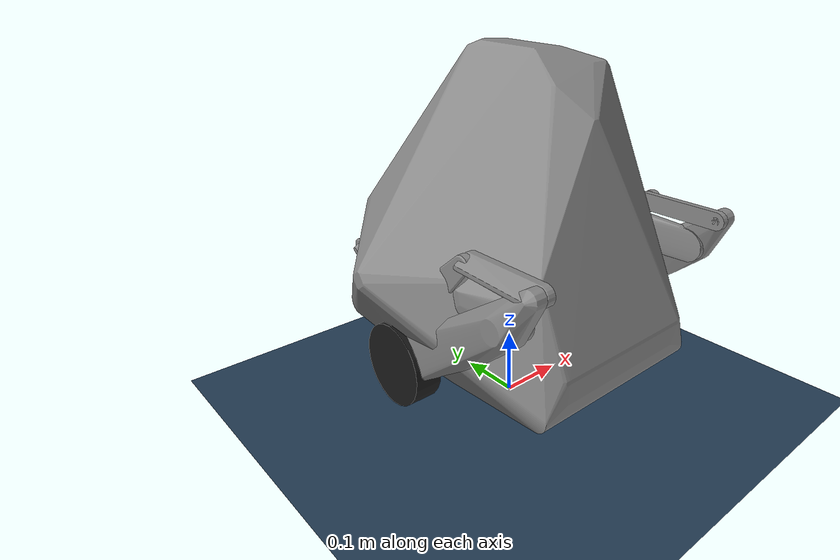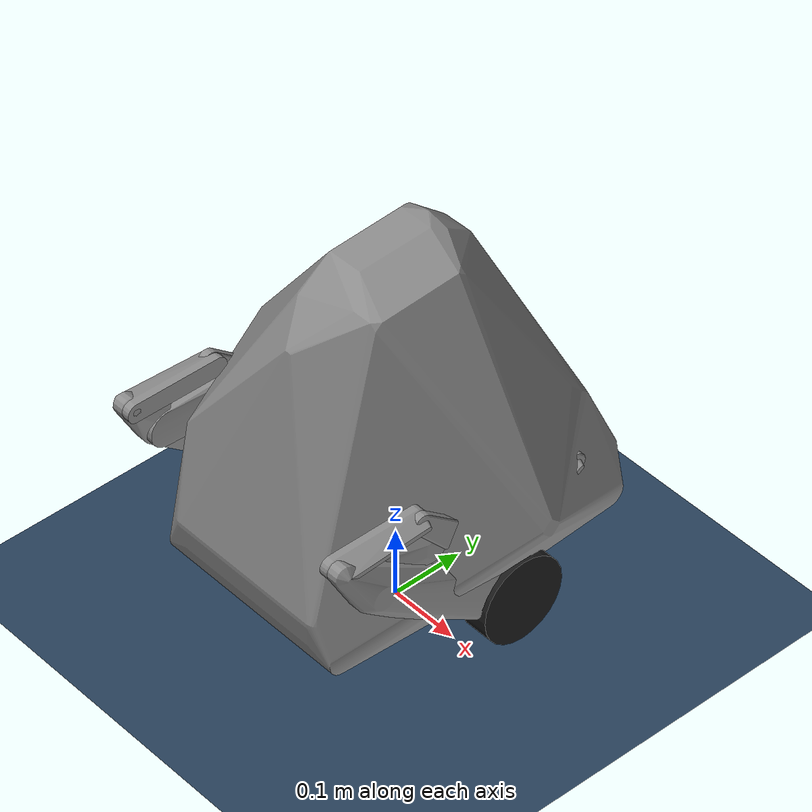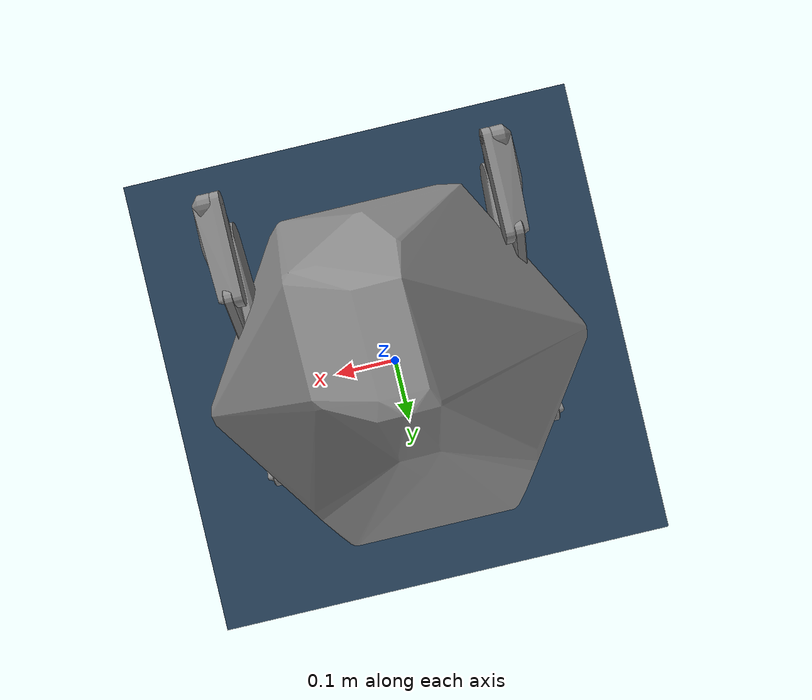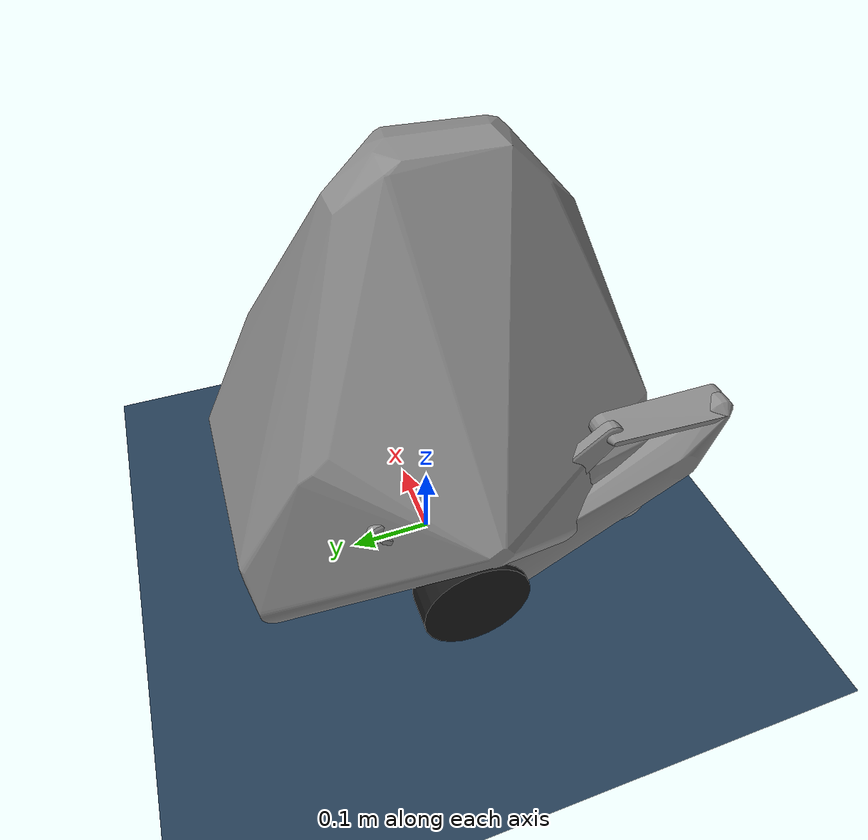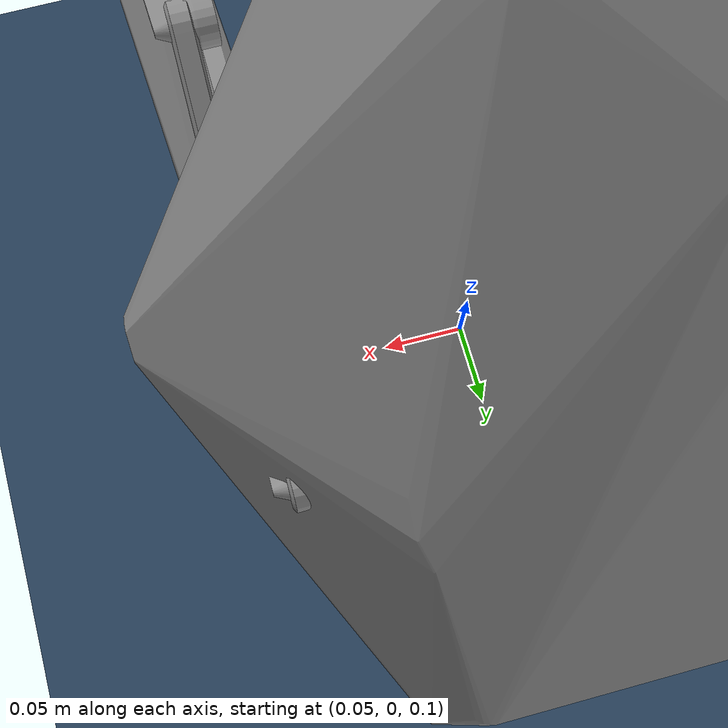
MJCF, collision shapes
<mujoco model="real68 scene">
  <include file="real68.xml"/>

  <statistic center="0 0 0.2" extent="0.8"/>

  <visual>
    <headlight diffuse="0.6 0.6 0.6" ambient="0.3 0.3 0.3" specular="0 0 0"/>
    <rgba haze="0.15 0.25 0.35 1"/>
    <global azimuth="-130" elevation="-20"/>
  </visual>

  <asset>
    <texture type="skybox" builtin="gradient" rgb1="0.3 0.5 0.7" rgb2="0 0 0" width="512" height="3072"/>
    <texture type="2d" name="groundplane" builtin="checker" mark="edge" rgb1="0.2 0.3 0.4" rgb2="0.1 0.2 0.3" markrgb="0.8 0.8 0.8" width="300" height="300"/>
    <material name="groundplane" texture="groundplane" texuniform="true" texrepeat="5 5" reflectance="0.2"/>
  </asset>

  <worldbody>
    <light pos="0 0 1.5" dir="0 0 -1" directional="true"/>
    <geom name="floor" size="0 0 0.05" type="plane" material="groundplane"/>
  </worldbody>

  <contact>
    <pair geom1="left_chuanliangan3_collision" geom2="floor" solref="0.02 1" solimp="0.8 0.95 0.002 0.9 2"/>
    <pair geom1="left_chuanliangan5_collision" geom2="floor" solref="0.02 1" solimp="0.8 0.95 0.002 0.9 2"/>
    <pair geom1="right_liangan3_collision" geom2="floor" solref="0.02 1" solimp="0.8 0.95 0.002 0.9 2"/>
    <pair geom1="right_liangan5_collision" geom2="floor" solref="0.02 1" solimp="0.8 0.95 0.002 0.9 2"/>
    <pair geom1="left_wheel_ground_contact" geom2="floor" solref="0.02 1" solimp="0.8 0.95 0.002 0.9 2"/>
    <pair geom1="right_wheel_ground_contact" geom2="floor" solref="0.02 1" solimp="0.8 0.95 0.002 0.9 2"/>
  </contact>

  <sensor>
    <contact name="left_wheel_contact" geom1="floor" geom2="left_wheel_ground_contact" data="found" num="1" reduce="mindist"/>
    <contact name="right_wheel_contact" geom1="floor" geom2="right_wheel_ground_contact" data="found" num="1" reduce="mindist"/>
    <contact name="base_link_contact" body1="base_link" geom2="floor" data="found" num="1" reduce="mindist"/>
    <contact name="left_hip_bigleg_contact" geom1="floor" geom2="left_hip_bigleg_collision" data="found" num="1" reduce="mindist"/>
    <contact name="left_calf_smallleg_liangan_contact" geom1="floor" geom2="left_calf_smallleg_liangan_collision" data="found" num="1" reduce="mindist"/>
    <contact name="left_calf_smallleg_contact" geom1="floor" geom2="left_calf_smallleg_collision" data="found" num="1" reduce="mindist"/>
    <contact name="left_chuanliangan2_contact" geom1="floor" geom2="left_chuanliangan2_collision" data="found" num="1" reduce="mindist"/>
    <contact name="left_chuanliangan3_contact" geom1="floor" geom2="left_chuanliangan3_collision" data="found" num="1" reduce="mindist"/>
    <contact name="left_chuanliangan5_contact" geom1="floor" geom2="left_chuanliangan5_collision" data="found" num="1" reduce="mindist"/>
    <contact name="right_hip_bigleg_contact" geom1="floor" geom2="right_hip_bigleg_collision" data="found" num="1" reduce="mindist"/>
    <contact name="right_calf_smallleg_liangan_contact" geom1="floor" geom2="right_calf_smallleg_liangan_collision" data="found" num="1" reduce="mindist"/>
    <contact name="right_calf_smallleg_contact" geom1="floor" geom2="right_calf_smallleg_collision" data="found" num="1" reduce="mindist"/>
    <contact name="right_liangan2_contact" geom1="floor" geom2="right_liangan2_collision" data="found" num="1" reduce="mindist"/>
    <contact name="right_liangan3_contact" geom1="floor" geom2="right_liangan3_collision" data="found" num="1" reduce="mindist"/>
    <contact name="right_liangan5_contact" geom1="floor" geom2="right_liangan5_collision" data="found" num="1" reduce="mindist"/>
  </sensor>

  <keyframe>
    <key name="home" qpos="
      0 0 0.257282
      1 0 0 0
      0.2009805 0.275501 -0.045959 -0.517042 0.275452 -0.080660 0.275316
      -0.2009805 0.275501 -0.076009 0.517042 -0.275452 0.080660 0.275316"
      ctrl="0 0 0 0 0 0"/>
  </keyframe>
</mujoco>

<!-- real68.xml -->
<mujoco model="real68">
  <compiler angle="radian" meshdir="assets" autolimits="true" inertiafromgeom="false"/>
  <option timestep="0.001" gravity="0 0 -9.81" iterations="100" ls_iterations="50"/>

  <default>
    <geom contype="1" conaffinity="0" friction="0.8 0.1 0.1" density="0"/>
    <default class="real68_collision">
      <geom group="3" rgba="0.55 0.55 0.55 0.18" friction="0.9 0.02 0.002" contype="1" conaffinity="1" density="0" condim="3"/>
    </default>
  </default>

  <asset>
    <material name="mat_collision" rgba="0.55 0.55 0.55 0.18"/>
    <mesh name="base_link" file="base_link.STL"/>
    <mesh name="left_calf_smallleg" file="left_calf_smallleg.STL"/>
    <mesh name="left_calf_smallleg_liangan" file="left_calf_smallleg_liangan.STL"/>
    <mesh name="left_chuanliangan2" file="left_chuanliangan2.STL"/>
    <mesh name="left_chuanliangan3" file="left_chuanliangan3.STL"/>
    <mesh name="left_chuanliangan5" file="left_chuanliangan5.STL"/>
    <mesh name="left_hip_bigleg" file="left_hip_bigleg.STL"/>
    <mesh name="left_wheel" file="left_wheel.STL"/>
    <mesh name="right_calf_smallleg" file="right_calf_smallleg.STL"/>
    <mesh name="right_calf_smallleg_liangan" file="right_calf_smallleg_liangan.STL"/>
    <mesh name="right_hip_bigleg" file="right_hip_bigleg.STL"/>
    <mesh name="right_liangan2" file="right_liangan2.STL"/>
    <mesh name="right_liangan3" file="right_liangan3.STL"/>
    <mesh name="right_liangan5" file="right_liangan5.STL"/>
    <mesh name="right_wheel" file="right_wheel.STL"/>
    <mesh name="base_link_collision_mesh" file="collision/base_link_collision.STL"/>
    <mesh name="left_hip_bigleg_collision_mesh" file="collision/left_hip_bigleg_collision.STL"/>
    <mesh name="left_calf_smallleg_liangan_collision_mesh" file="collision/left_calf_smallleg_liangan_collision.STL"/>
    <mesh name="left_calf_smallleg_collision_mesh" file="collision/left_calf_smallleg_collision.STL"/>
    <mesh name="left_chuanliangan2_collision_mesh" file="collision/left_chuanliangan2_collision.STL"/>
    <mesh name="left_chuanliangan3_collision_mesh" file="collision/left_chuanliangan3_collision.STL"/>
    <mesh name="left_chuanliangan5_collision_mesh" file="collision/left_chuanliangan5_collision.STL"/>
    <mesh name="right_hip_bigleg_collision_mesh" file="collision/right_hip_bigleg_collision.STL"/>
    <mesh name="right_calf_smallleg_liangan_collision_mesh" file="collision/right_calf_smallleg_liangan_collision.STL"/>
    <mesh name="right_calf_smallleg_collision_mesh" file="collision/right_calf_smallleg_collision.STL"/>
    <mesh name="right_liangan2_collision_mesh" file="collision/right_liangan2_collision.STL"/>
    <mesh name="right_liangan3_collision_mesh" file="collision/right_liangan3_collision.STL"/>
    <mesh name="right_liangan5_collision_mesh" file="collision/right_liangan5_collision.STL"/>
  </asset>

  <worldbody>
    <body name="base_link" pos="0 0 0.256230" gravcomp="0">
      <freejoint name="base_free"/>
      <inertial
        pos="-0.00132434244703769 0.0172850703011076 0.0327987743072088"
        mass="9.9614853561176"
        fullinertia="0.0150456290506877 0.0147083160106689 0.020560729909447 -8.42015360450442E-06 1.7027645408049E-05 -2.2943093759725E-05"/>
      <site name="imu_site" pos="0 0 0" size="0.005" rgba="0.2 0.8 0.9 0.7" group="5"/>
      <geom name="base_link_visual" type="mesh" mesh="base_link" rgba="0.647058823529412 0.619607843137255 0.588235294117647 1" group="1" contype="0" conaffinity="0"/>
      <geom name="base_link_collision" type="mesh" mesh="base_link_collision_mesh" class="real68_collision"/>

      <body name="left_hip_bigleg" pos="-0.173052541904345 0.0153736058348721 0.0102446421173633">
        <joint name="left_hip_bigleg_joint" type="hinge" axis="1 0 0" damping="0.05" armature="0.005"/>
        <inertial pos="-0.000219746901381638 -0.101308073503432 0.00240688958486085" mass="0.263037897106768" fullinertia="0.00146612202923645 7.95671567353713E-05 0.00139103007363177 4.55398927684304E-08 -9.16464171603606E-09 1.9708541502943E-05"/>
        <geom name="left_hip_bigleg_visual" type="mesh" mesh="left_hip_bigleg" rgba="0.764705882352941 0.337254901960784 1 1" group="1" contype="0" conaffinity="0"/>
        <geom name="left_hip_bigleg_collision" type="mesh" mesh="left_hip_bigleg_collision_mesh" class="real68_collision"/>
        <site name="left_hip_bigleg_upper_loop_site" pos="0 -0.095 0" size="0.006" rgba="0.05 0.8 0.35 1"/>

        <body name="left_calf_smallleg_liangan" pos="-0.0155000000000023 -0.215 0">
          <joint name="left_calf_smallleg_liangan_joint" type="hinge" axis="-1 0 0" damping="0.05" armature="0.005" range="0 0.99" limited="true"/>
          <inertial pos="-0.000813259759227931 0.0621665240567283 -0.0450257373726943" mass="0.348266975116161" fullinertia="0.00255636487261541 0.000879689262529599 0.00169334510916448 -6.78174399093104E-07 8.59472859523973E-07 0.00112066108155895"/>
          <geom name="left_calf_smallleg_liangan_visual" type="mesh" mesh="left_calf_smallleg_liangan" rgba="1 1 1 1" group="1" contype="0" conaffinity="0"/>
          <geom name="left_calf_smallleg_liangan_collision" type="mesh" mesh="left_calf_smallleg_liangan_collision_mesh" class="real68_collision"/>
          <site name="left_calf_smallleg_liangan_loop_site" pos="0 -0.04302 0.04873" size="0.006" rgba="0.05 0.35 1 1"/>

          <body name="left_wheel" pos="0 0.214999999999998 -0.142614865985284">
            <joint name="left_wheel_joint" type="hinge" axis="1 0 0" damping="0.05" armature="0.005"/>
            <inertial pos="-0.0292649720775254 8.0592612691277E-05 -4.22455592956061E-05" mass="0.355263603886936" fullinertia="0.000740356424288123 0.000397340943479887 0.000396792456478284 -2.23358145570221E-07 9.22720741167224E-08 -2.77805316278827E-07"/>
            <geom name="left_wheel_visual" type="mesh" mesh="left_wheel" rgba="0.898039215686275 0.917647058823529 0.929411764705882 1" group="1" contype="0" conaffinity="0"/>
            <geom name="left_wheel_collision" type="mesh" mesh="left_wheel" group="3" rgba="0.55 0.55 0.55 0.18" contype="0" conaffinity="0"/>
            <geom name="left_wheel_ground_contact" type="cylinder" size="0.06 0.02" quat="0.70710678 0 0.70710678 0" rgba="0.1 0.1 0.1 0.2" friction="1.4 0.02 0.002" contype="1" conaffinity="1" density="0" condim="3"/>
          </body>
        </body>

        <body name="left_calf_smallleg" pos="0 0 0">
          <joint name="left_calf_smallleg_joint" type="hinge" axis="1 0 0" damping="0.05" armature="0.005"/>
          <inertial pos="-0.0131414441627703 0.0552390007483394 -1.38777878078145E-16" mass="0.0744739466903637" fullinertia="8.1622255397731E-05 9.30868484898377E-06 7.33203506377679E-05 -4.15453379048053E-07 1.60520136691981E-21 1.68517196824682E-19"/>
          <geom name="left_calf_smallleg_visual" type="mesh" mesh="left_calf_smallleg" rgba="0.898039215686275 0.917647058823529 0.929411764705882 1" group="1" contype="0" conaffinity="0"/>
          <geom name="left_calf_smallleg_collision" type="mesh" mesh="left_calf_smallleg_collision_mesh" class="real68_collision"/>

          <body name="left_chuanliangan2" pos="-0.000499999999999006 0.0949999999999999 0">
            <joint name="left_chuanliangan2_joint" type="hinge" axis="1 0 0" damping="0.05" armature="0.005" range="0 0.98" limited="true"/>
            <inertial pos="-0.00213213748385587 -0.0469637483789413 -0.0330097658251312" mass="0.0870883663506132" fullinertia="0.000118248399513985 3.98366360409607E-05 8.3619945286352E-05 3.35722604990033E-08 3.0541172133192E-08 -5.13756715459264E-05"/>
            <geom name="left_chuanliangan2_visual" type="mesh" mesh="left_chuanliangan2" rgba="0.898039215686275 0.917647058823529 0.929411764705882 1" group="1" contype="0" conaffinity="0"/>
            <geom name="left_chuanliangan2_collision" type="mesh" mesh="left_chuanliangan2_collision_mesh" class="real68_collision"/>

            <body name="left_chuanliangan3" pos="0 -0.0950000000000002 -0.0630158710167523">
              <joint name="left_chuanliangan3_joint" type="hinge" axis="1 0 0" damping="0.05" armature="0.005" range="-0.59 0" limited="true"/>
              <inertial pos="-0.0124972208107553 -0.0748582415461167 0.0553152463382384" mass="0.115370735580252" fullinertia="0.000173731014314758 7.06863133257899E-05 0.000104234391413488 -7.09140353520442E-19 5.44752745268893E-19 7.87828463496707E-05"/>
              <geom name="left_chuanliangan3_visual" type="mesh" mesh="left_chuanliangan3" rgba="1 1 1 1" group="1" contype="0" conaffinity="0"/>
              <geom name="left_chuanliangan3_collision" type="mesh" mesh="left_chuanliangan3_collision_mesh" class="real68_collision"/>
              <site name="left_chuanliangan3_upper_loop_site" pos="0 -0.095 0.06302" size="0.006" rgba="1 0.7 0.05 1"/>

              <body name="left_chuanliangan5" pos="-0.0130000000000015 -0.13802158759429 0.111741049321884">
                <joint name="left_chuanliangan5_joint" type="hinge" axis="1 0 0" damping="0.05" armature="0.005" range="0 0.99" limited="true"/>
                <inertial pos="0.0100896855576336 -0.061330058396757 3.88578058618805E-16" mass="0.0907006475745755" fullinertia="0.000130603403834254 6.44412731949388E-06 0.000130575590723343 -1.30992294690664E-18 9.64839790001429E-22 -1.77482419182007E-09"/>
                <geom name="left_chuanliangan5_visual" type="mesh" mesh="left_chuanliangan5" rgba="0.898039215686275 0.917647058823529 0.929411764705882 1" group="1" contype="0" conaffinity="0"/>
                <geom name="left_chuanliangan5_collision" type="mesh" mesh="left_chuanliangan5_collision_mesh" class="real68_collision"/>
                <site name="left_chuanliangan5_loop_site" pos="-0.002 -0.120 0" size="0.006" rgba="1 0.15 0.05 1"/>
              </body>
            </body>
          </body>
        </body>
      </body>

      <body name="right_hip_bigleg" pos="0.168247458095655 0.0153736058348686 0.0102446421173926">
        <joint name="right_hip_bigleg_joint" type="hinge" axis="-1 0 0" damping="0.05" armature="0.005"/>
        <inertial pos="0.000225305279873633 -0.10131912445557 0.0024132698550518" mass="0.263037897106769" fullinertia="0.0014654815737583 7.95186627094033E-05 0.00139043811217959 -4.55823378419894E-08 9.18914737939143E-09 1.94956598926327E-05"/>
        <geom name="right_hip_bigleg_visual" type="mesh" mesh="right_hip_bigleg" rgba="0.898039215686275 0.917647058823529 0.929411764705882 1" group="1" contype="0" conaffinity="0"/>
        <geom name="right_hip_bigleg_collision" type="mesh" mesh="right_hip_bigleg_collision_mesh" class="real68_collision"/>
        <site name="right_hip_bigleg_upper_loop_site" pos="0 -0.095 0" size="0.006" rgba="0.05 0.8 0.35 1"/>

        <body name="right_calf_smallleg_liangan" pos="0.0154999999999977 -0.215 0">
          <joint name="right_calf_smallleg_liangan_joint" type="hinge" axis="-1 0 0" damping="0.05" armature="0.005" range="0 0.99" limited="true"/>
          <inertial pos="0.000823064990111144 0.0621889019965068 -0.045110958311392" mass="0.348668897550022" fullinertia="0.00255713495377316 0.000880415160469513 0.00169340931900021 6.9579457168601E-07 -7.66552831976176E-07 0.00112090385448229"/>
          <geom name="right_calf_smallleg_liangan_visual" type="mesh" mesh="right_calf_smallleg_liangan" rgba="1 1 1 1" group="1" contype="0" conaffinity="0"/>
          <geom name="right_calf_smallleg_liangan_collision" type="mesh" mesh="right_calf_smallleg_liangan_collision_mesh" class="real68_collision"/>
          <site name="right_calf_smallleg_liangan_loop_site" pos="0 -0.04302 0.04873" size="0.006" rgba="0.05 0.35 1 1"/>

          <body name="right_wheel" pos="0 0.215 -0.142614865985287">
            <joint name="right_wheel_joint" type="hinge" axis="1 0 0" damping="0.05" armature="0.005"/>
            <inertial pos="0.0292705304484341 8.87559201086241E-05 -2.00557188388302E-05" mass="0.355263604031154" fullinertia="0.000740356424291986 0.000397384810358229 0.000396748589602256 2.299045170983E-07 -7.44777342414805E-08 -2.2625445432611E-07"/>
            <geom name="right_wheel_visual" type="mesh" mesh="right_wheel" rgba="1 1 1 1" group="1" contype="0" conaffinity="0"/>
            <geom name="right_wheel_collision" type="mesh" mesh="right_wheel" group="3" rgba="0.55 0.55 0.55 0.18" contype="0" conaffinity="0"/>
            <geom name="right_wheel_ground_contact" type="cylinder" size="0.06 0.02" quat="0.70710678 0 0.70710678 0" rgba="0.1 0.1 0.1 0.2" friction="1.4 0.02 0.002" contype="1" conaffinity="1" density="0" condim="3"/>
          </body>
        </body>

        <body name="right_calf_smallleg" pos="0.013 0 0">
          <joint name="right_calf_smallleg_joint" type="hinge" axis="-1 0 0" damping="0.05" armature="0.005"/>
          <inertial pos="0.000147002541264762 0.0552390007483268 1.15712994741557E-13" mass="0.0744739466903638" fullinertia="8.16222553977312E-05 9.30868484898377E-06 7.33203506377681E-05 4.15453379046786E-07 -2.63706709578613E-23 -3.68734906878956E-21"/>
          <geom name="right_calf_smallleg_visual" type="mesh" mesh="right_calf_smallleg" rgba="0.898039215686275 0.917647058823529 0.929411764705882 1" group="1" contype="0" conaffinity="0"/>
          <geom name="right_calf_smallleg_collision" type="mesh" mesh="right_calf_smallleg_collision_mesh" class="real68_collision"/>

          <body name="right_liangan2" pos="-0.012499999999999 0.0949999999999868 0">
            <joint name="right_liangan2_joint" type="hinge" axis="-1 0 0" damping="0.05" armature="0.005" range="-0.98 0" limited="true"/>
            <inertial pos="0.00213769586234819 -0.046963748378941 -0.0330097658251313" mass="0.087088366350613" fullinertia="0.000118248399513984 3.98347732424781E-05 8.36218080848341E-05 -3.35722605001056E-08 -3.05411721339202E-08 -5.1372013684019E-05"/>
            <geom name="right_liangan2_visual" type="mesh" mesh="right_liangan2" rgba="0.898039215686275 0.917647058823529 0.929411764705882 1" group="1" contype="0" conaffinity="0"/>
            <geom name="right_liangan2_collision" type="mesh" mesh="right_liangan2_collision_mesh" class="real68_collision"/>

            <body name="right_liangan3" pos="0 -0.0949999999999998 -0.0630158710167527">
              <joint name="right_liangan3_joint" type="hinge" axis="-1 0 0" damping="0.05" armature="0.005" range="0 0.59" limited="true"/>
              <inertial pos="0.0125027791892476 -0.0748582415461172 0.0553152463382379" mass="0.115370735580252" fullinertia="0.000173731014314758 7.06863133257888E-05 0.000104234391413489 -7.27962615036999E-19 5.5828278066847E-19 7.87828463496704E-05"/>
              <geom name="right_liangan3_visual" type="mesh" mesh="right_liangan3" rgba="1 1 1 1" group="1" contype="0" conaffinity="0"/>
              <geom name="right_liangan3_collision" type="mesh" mesh="right_liangan3_collision_mesh" class="real68_collision"/>
              <site name="right_liangan3_upper_loop_site" pos="0 -0.095 0.06302" size="0.006" rgba="1 0.7 0.05 1"/>

              <body name="right_liangan5" pos="0.0129999999999986 -0.138021587594291 0.111741049321883">
                <joint name="right_liangan5_joint" type="hinge" axis="1 0 0" damping="0.05" armature="0.005" range="0 0.99" limited="true"/>
                <inertial pos="-0.0100841271791399 -0.0613300583967568 -1.38777878078145E-16" mass="0.0907006475745755" fullinertia="0.000130603403834254 6.44644114342168E-06 0.000130573276899415 -6.5999751473204E-19 -2.95459147296541E-21 -2.32807861826833E-09"/>
                <geom name="right_liangan5_visual" type="mesh" mesh="right_liangan5" rgba="0.898039215686275 0.917647058823529 0.929411764705882 1" group="1" contype="0" conaffinity="0"/>
                <geom name="right_liangan5_collision" type="mesh" mesh="right_liangan5_collision_mesh" class="real68_collision"/>
                <site name="right_liangan5_loop_site" pos="0.002 -0.120 0" size="0.006" rgba="1 0.15 0.05 1"/>
              </body>
            </body>
          </body>
        </body>
      </body>
    </body>
  </worldbody>

  <equality>
    <connect name="left_leg_upper_connect" site1="left_chuanliangan3_upper_loop_site" site2="left_hip_bigleg_upper_loop_site" solref="0.001 1" solimp="0.99 0.99 0.01 0.5 2"/>
    <connect name="left_leg_fourbar_connect" site1="left_chuanliangan5_loop_site" site2="left_calf_smallleg_liangan_loop_site" solref="0.001 1" solimp="0.99 0.99 0.01 0.5 2"/>
    <connect name="right_leg_upper_connect" site1="right_liangan3_upper_loop_site" site2="right_hip_bigleg_upper_loop_site" solref="0.001 1" solimp="0.99 0.99 0.01 0.5 2"/>
    <connect name="right_leg_fourbar_connect" site1="right_liangan5_loop_site" site2="right_calf_smallleg_liangan_loop_site" solref="0.001 1" solimp="0.99 0.99 0.01 0.5 2"/>
  </equality>

  <actuator>
    <motor name="left_hip_bigleg_joint_actuator" joint="left_hip_bigleg_joint" ctrlrange="-8 8"/>
    <motor name="left_wheel_joint_actuator" joint="left_wheel_joint" ctrlrange="-12 12"/>
    <motor name="left_calf_smallleg_joint_actuator" joint="left_calf_smallleg_joint" ctrlrange="-18 18"/>
    <motor name="right_hip_bigleg_joint_actuator" joint="right_hip_bigleg_joint" ctrlrange="-8 8"/>
    <motor name="right_wheel_joint_actuator" joint="right_wheel_joint" ctrlrange="-12 12"/>
    <motor name="right_calf_smallleg_joint_actuator" joint="right_calf_smallleg_joint" ctrlrange="-18 18"/>
  </actuator>

  <contact>
    <exclude body1="base_link" body2="left_hip_bigleg"/>
    <exclude body1="base_link" body2="left_calf_smallleg_liangan"/>
    <exclude body1="base_link" body2="left_calf_smallleg"/>
    <exclude body1="base_link" body2="left_chuanliangan2"/>
    <exclude body1="base_link" body2="left_chuanliangan3"/>
    <exclude body1="base_link" body2="left_chuanliangan5"/>
    <exclude body1="base_link" body2="left_wheel"/>
    <exclude body1="left_hip_bigleg" body2="left_calf_smallleg_liangan"/>
    <exclude body1="left_calf_smallleg_liangan" body2="left_wheel"/>
    <exclude body1="left_hip_bigleg" body2="left_calf_smallleg"/>
    <exclude body1="left_calf_smallleg" body2="left_chuanliangan2"/>
    <exclude body1="left_chuanliangan2" body2="left_chuanliangan3"/>
    <exclude body1="left_chuanliangan3" body2="left_chuanliangan5"/>
    <exclude body1="left_chuanliangan3" body2="left_hip_bigleg"/>
    <exclude body1="left_chuanliangan5" body2="left_hip_bigleg"/>
    <exclude body1="left_chuanliangan5" body2="left_calf_smallleg_liangan"/>
    <exclude body1="base_link" body2="right_hip_bigleg"/>
    <exclude body1="base_link" body2="right_calf_smallleg_liangan"/>
    <exclude body1="base_link" body2="right_calf_smallleg"/>
    <exclude body1="base_link" body2="right_liangan2"/>
    <exclude body1="base_link" body2="right_liangan3"/>
    <exclude body1="base_link" body2="right_liangan5"/>
    <exclude body1="base_link" body2="right_wheel"/>
    <exclude body1="right_hip_bigleg" body2="right_calf_smallleg_liangan"/>
    <exclude body1="right_calf_smallleg_liangan" body2="right_wheel"/>
    <exclude body1="right_hip_bigleg" body2="right_calf_smallleg"/>
    <exclude body1="right_calf_smallleg" body2="right_liangan2"/>
    <exclude body1="right_liangan2" body2="right_liangan3"/>
    <exclude body1="right_liangan3" body2="right_liangan5"/>
    <exclude body1="right_liangan3" body2="right_hip_bigleg"/>
    <exclude body1="right_liangan5" body2="right_hip_bigleg"/>
    <exclude body1="right_liangan5" body2="right_calf_smallleg_liangan"/>
  </contact>

  <sensor>
    <gyro name="gyro" site="imu_site"/>
    <accelerometer name="imu_accel" site="imu_site"/>
    <framequat name="imu_quat" objtype="site" objname="imu_site"/>
    <velocimeter name="local_linvel" site="imu_site"/>
    <framezaxis name="upvector" objtype="site" objname="imu_site"/>

    <jointpos name="left_hip_bigleg_joint_pos" joint="left_hip_bigleg_joint"/>
    <jointpos name="left_wheel_joint_pos" joint="left_wheel_joint"/>
    <jointpos name="left_calf_smallleg_joint_pos" joint="left_calf_smallleg_joint"/>
    <jointpos name="right_hip_bigleg_joint_pos" joint="right_hip_bigleg_joint"/>
    <jointpos name="right_wheel_joint_pos" joint="right_wheel_joint"/>
    <jointpos name="right_calf_smallleg_joint_pos" joint="right_calf_smallleg_joint"/>

    <jointvel name="left_hip_bigleg_joint_vel" joint="left_hip_bigleg_joint"/>
    <jointvel name="left_wheel_joint_vel" joint="left_wheel_joint"/>
    <jointvel name="left_calf_smallleg_joint_vel" joint="left_calf_smallleg_joint"/>
    <jointvel name="right_hip_bigleg_joint_vel" joint="right_hip_bigleg_joint"/>
    <jointvel name="right_wheel_joint_vel" joint="right_wheel_joint"/>
    <jointvel name="right_calf_smallleg_joint_vel" joint="right_calf_smallleg_joint"/>

    <jointpos name="left_calf_smallleg_liangan_joint_pos" joint="left_calf_smallleg_liangan_joint"/>
    <jointpos name="left_chuanliangan2_joint_pos" joint="left_chuanliangan2_joint"/>
    <jointpos name="left_chuanliangan3_joint_pos" joint="left_chuanliangan3_joint"/>
    <jointpos name="left_chuanliangan5_joint_pos" joint="left_chuanliangan5_joint"/>
    <jointpos name="right_calf_smallleg_liangan_joint_pos" joint="right_calf_smallleg_liangan_joint"/>
    <jointpos name="right_liangan2_joint_pos" joint="right_liangan2_joint"/>
    <jointpos name="right_liangan3_joint_pos" joint="right_liangan3_joint"/>
    <jointpos name="right_liangan5_joint_pos" joint="right_liangan5_joint"/>

    <jointvel name="left_calf_smallleg_liangan_joint_vel" joint="left_calf_smallleg_liangan_joint"/>
    <jointvel name="left_chuanliangan2_joint_vel" joint="left_chuanliangan2_joint"/>
    <jointvel name="left_chuanliangan3_joint_vel" joint="left_chuanliangan3_joint"/>
    <jointvel name="left_chuanliangan5_joint_vel" joint="left_chuanliangan5_joint"/>
    <jointvel name="right_calf_smallleg_liangan_joint_vel" joint="right_calf_smallleg_liangan_joint"/>
    <jointvel name="right_liangan2_joint_vel" joint="right_liangan2_joint"/>
    <jointvel name="right_liangan3_joint_vel" joint="right_liangan3_joint"/>
    <jointvel name="right_liangan5_joint_vel" joint="right_liangan5_joint"/>
  </sensor>
</mujoco>
